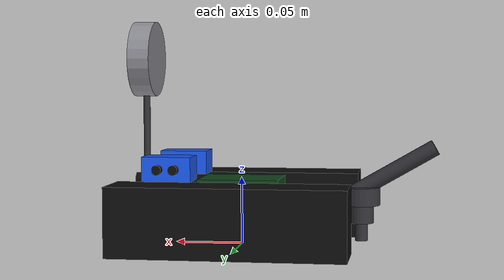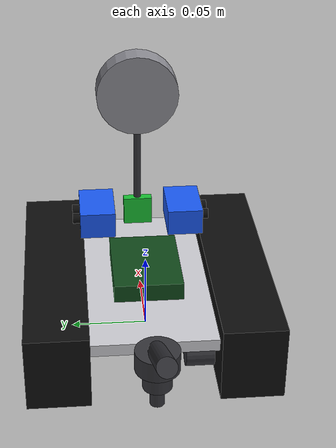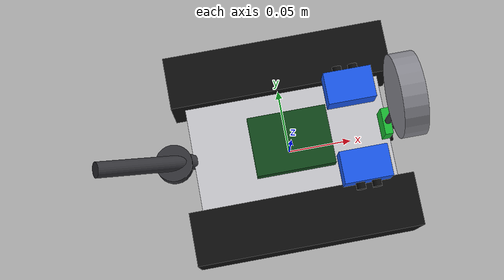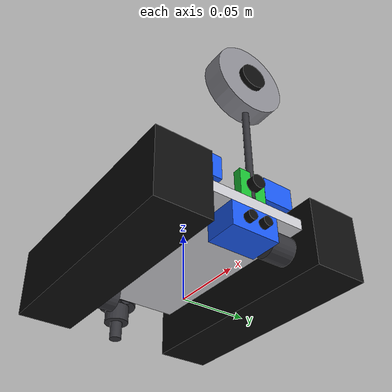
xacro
<?xml version="1.0"?>
<robot name="tank_car" xmlns:xacro="http://www.ros.org/wiki/xacro">

  <xacro:property name="pi" value="3.1415926535897931"/>

  <!-- Main dimensions (meters) -->
  <xacro:property name="body_length" value="0.15"/>
  <xacro:property name="body_width"  value="0.08"/>
  <xacro:property name="body_height" value="0.008"/>
  <xacro:property name="body_ground_clearance" value="0.030"/>

  <!-- Track + wheel geometry -->
  <xacro:property name="track_width"       value="0.040"/>
  <xacro:property name="wheel_radius"      value="0.025"/>
  <xacro:property name="wheel_thickness"   value="0.020"/>
  <xacro:property name="wheelbase"         value="0.120"/>
  <xacro:property name="track_loop_length" value="${wheelbase + 2.0*wheel_radius}"/>
  <xacro:property name="track_loop_height" value="${2.0*wheel_radius}"/>
  <xacro:property name="track_center_y"    value="${body_width/2.0 + track_width/2.0}"/>

  <!-- Derived positions -->
  <xacro:property name="body_center_z" value="${body_ground_clearance + body_height/2.0}"/>
  <xacro:property name="wheel_center_rel_z" value="${wheel_radius - body_center_z}"/>
  <xacro:property name="front_x" value="${ wheelbase/2.0}"/>
  <xacro:property name="rear_x"  value="${-wheelbase/2.0}"/>

  <!-- Decorative motors now tucked under the platform -->
  <xacro:property name="motor_radius" value="0.010"/>
  <xacro:property name="motor_length" value="0.018"/>
  <xacro:property name="motor_inset_y" value="${body_width/2.0 - motor_length/2.0 - 0.002}"/>
  <xacro:property name="motor_underbody_z" value="${-body_height/2.0 - motor_radius}"/>

  <!-- Blue box moved to front underside, rotated 90 deg -->
  <xacro:property name="under_box_length" value="0.036"/>
  <xacro:property name="under_box_width" value="0.024"/>
  <xacro:property name="under_box_height" value="0.018"/>
  <xacro:property name="under_box_mass" value="0.015"/>
  <xacro:property name="under_box_x" value="${body_length/2.0 - under_box_length/2.0 + 0.006}"/>
  <xacro:property name="under_box_z" value="${-body_height/2.0 - under_box_height/2.0}"/>
  <xacro:property name="top_box_x" value="${body_length/2.0 - under_box_length/2.0 - 0.008}"/>
  <xacro:property name="top_box_z" value="${body_height/2.0 + under_box_height/2.0 + 0.012}"/>
  <xacro:property name="top_box_y_offset" value="0.030"/>
  <xacro:property name="sensor_eye_radius" value="0.0035"/>
  <xacro:property name="sensor_eye_length" value="0.005"/>
  <xacro:property name="sensor_eye_x_offset" value="0.006"/>

  <!-- Rear floating cone (approximated with tapered cylinders) -->
  <xacro:property name="rear_cone_height" value="0.040"/>
  <xacro:property name="rear_cone_radius" value="0.014"/>
  <xacro:property name="rear_cone_mass" value="0.015"/>
  <xacro:property name="rear_cone_x" value="${-body_length/2.0 - 0.015}"/>
  <xacro:property name="rear_cone_z" value="-0.010"/>

  <!-- Rear cylinder from butt: 8 cm, tilted -30 deg -->
  <xacro:property name="rear_butt_cyl_length" value="0.080"/>
  <xacro:property name="rear_butt_cyl_radius" value="0.006"/>
  <xacro:property name="rear_butt_cyl_mass" value="0.012"/>
  <xacro:property name="rear_butt_cyl_axis_y" value="${2*pi/3}"/>
  <xacro:property name="rear_butt_cyl_center_x" value="${-body_length/2.0 - 0.5*rear_butt_cyl_length*0.8660254}"/>
  <xacro:property name="rear_butt_cyl_center_z" value="${0.5*rear_butt_cyl_length*0.5}"/>

  <!-- Front high webcam-like circular body -->
  <xacro:property name="webcam_radius" value="0.028"/>
  <xacro:property name="webcam_thickness" value="0.016"/>
  <xacro:property name="webcam_mass" value="0.020"/>
  <xacro:property name="webcam_x" value="${body_length/2.0 - 0.002}"/>
  <xacro:property name="webcam_z" value="0.105"/>
  <xacro:property name="webcam_lens_radius" value="0.010"/>
  <xacro:property name="webcam_lens_depth" value="0.004"/>
  <xacro:property name="webcam_pole_radius" value="0.0025"/>
  <xacro:property name="webcam_pole_mass" value="0.006"/>
  <xacro:property name="webcam_pole_height" value="${webcam_z - body_height/2.0}"/>

  <!-- Small front-top lens -->
  <xacro:property name="front_top_box_size" value="0.020"/>
  <xacro:property name="front_top_box_height" value="0.006"/>
  <xacro:property name="front_top_box_mass" value="0.002"/>
  <xacro:property name="front_top_lens_radius" value="0.005"/>
  <xacro:property name="front_top_box_x" value="${body_length/2.0 - front_top_box_height/2.0}"/>
  <xacro:property name="front_top_box_z" value="${body_height/2.0 + front_top_box_size/2.0}"/>

  <!-- Mid-platform raspberry-like module -->
  <xacro:property name="raspberry_length" value="0.060"/>
  <xacro:property name="raspberry_width" value="0.045"/>
  <xacro:property name="raspberry_height" value="0.012"/>
  <xacro:property name="raspberry_mass" value="0.020"/>
  <xacro:property name="raspberry_z" value="${body_height/2.0 + raspberry_height/2.0}"/>

  <!-- Masses -->
  <xacro:property name="body_mass"        value="0.40"/>
  <xacro:property name="wheel_mass"       value="0.03"/>
  <xacro:property name="track_mass"       value="0.05"/>
  <xacro:property name="motor_mass"       value="0.04"/>

  <!-- Materials -->
  <material name="silver">
    <color rgba="0.80 0.80 0.82 1.0"/>
  </material>
  <material name="dark_gray">
    <color rgba="0.20 0.20 0.22 1.0"/>
  </material>
  <material name="gray">
    <color rgba="0.55 0.55 0.58 1.0"/>
  </material>
  <material name="black">
    <color rgba="0.05 0.05 0.05 1.0"/>
  </material>
  <material name="blue">
    <color rgba="0.10 0.35 0.95 1.0"/>
  </material>
  <material name="green">
    <color rgba="0.10 0.75 0.20 1.0"/>
  </material>
  <material name="dark_green">
    <color rgba="0.06 0.28 0.10 1.0"/>
  </material>

  <xacro:macro name="box_inertial" params="mass x y z">
    <inertial>
      <origin xyz="0 0 0" rpy="0 0 0"/>
      <mass value="${mass}"/>
      <inertia
        ixx="${mass*(y*y + z*z)/12.0}"
        ixy="0.0"
        ixz="0.0"
        iyy="${mass*(x*x + z*z)/12.0}"
        iyz="0.0"
        izz="${mass*(x*x + y*y)/12.0}"/>
    </inertial>
  </xacro:macro>

  <xacro:macro name="cylinder_inertial" params="mass radius length">
    <inertial>
      <!-- Cylinder axis is rotated onto the Y-axis to match the wheel axle direction -->
      <origin xyz="0 0 0" rpy="${pi/2} 0 0"/>
      <mass value="${mass}"/>
      <inertia
        ixx="${mass*(3.0*radius*radius + length*length)/12.0}"
        ixy="0.0"
        ixz="0.0"
        iyy="${mass*(3.0*radius*radius + length*length)/12.0}"
        iyz="0.0"
        izz="${0.5*mass*radius*radius}"/>
    </inertial>
  </xacro:macro>

  <xacro:macro name="wheel_link" params="name">
    <link name="${name}">
      <xacro:cylinder_inertial mass="${wheel_mass}" radius="${wheel_radius}" length="${wheel_thickness}"/>
      <visual>
        <origin xyz="0 0 0" rpy="${pi/2} 0 0"/>
        <geometry>
          <cylinder radius="${wheel_radius}" length="${wheel_thickness}"/>
        </geometry>
        <material name="silver"/>
      </visual>
      <collision>
        <origin xyz="0 0 0" rpy="${pi/2} 0 0"/>
        <geometry>
          <cylinder radius="${wheel_radius}" length="${wheel_thickness}"/>
        </geometry>
      </collision>
    </link>
  </xacro:macro>

  <xacro:macro name="track_link" params="name">
    <link name="${name}">
      <xacro:box_inertial mass="${track_mass}" x="${track_loop_length}" y="${track_width}" z="${track_loop_height}"/>
      <visual>
        <origin xyz="0 0 0" rpy="0 0 0"/>
        <geometry>
          <box size="${track_loop_length} ${track_width} ${track_loop_height}"/>
        </geometry>
        <material name="black"/>
      </visual>
    </link>
  </xacro:macro>

  <xacro:macro name="motor_link" params="name">
    <link name="${name}">
      <xacro:cylinder_inertial mass="${motor_mass}" radius="${motor_radius}" length="${motor_length}"/>
      <visual>
        <origin xyz="0 0 0" rpy="${pi/2} 0 0"/>
        <geometry>
          <cylinder radius="${motor_radius}" length="${motor_length}"/>
        </geometry>
        <material name="dark_gray"/>
      </visual>
      <collision>
        <origin xyz="0 0 0" rpy="${pi/2} 0 0"/>
        <geometry>
          <cylinder radius="${motor_radius}" length="${motor_length}"/>
        </geometry>
      </collision>
    </link>
  </xacro:macro>

  <xacro:macro name="ultrasonic_sensor_link" params="name eye_side_sign">
    <link name="${name}">
      <xacro:box_inertial mass="${under_box_mass}" x="${under_box_length}" y="${under_box_width}" z="${under_box_height}"/>
      <visual>
        <origin xyz="0 0 0" rpy="0 0 0"/>
        <geometry>
          <box size="${under_box_length} ${under_box_width} ${under_box_height}"/>
        </geometry>
        <material name="blue"/>
      </visual>
      <collision>
        <origin xyz="0 0 0" rpy="0 0 0"/>
        <geometry>
          <box size="${under_box_length} ${under_box_width} ${under_box_height}"/>
        </geometry>
      </collision>
      <visual>
        <origin xyz="${sensor_eye_x_offset} ${eye_side_sign*(under_box_width/2.0 + sensor_eye_length/2.0)} 0" rpy="${pi/2} 0 0"/>
        <geometry>
          <cylinder radius="${sensor_eye_radius}" length="${sensor_eye_length}"/>
        </geometry>
        <material name="black"/>
      </visual>
      <visual>
        <origin xyz="${-sensor_eye_x_offset} ${eye_side_sign*(under_box_width/2.0 + sensor_eye_length/2.0)} 0" rpy="${pi/2} 0 0"/>
        <geometry>
          <cylinder radius="${sensor_eye_radius}" length="${sensor_eye_length}"/>
        </geometry>
        <material name="black"/>
      </visual>
      <collision>
        <origin xyz="${sensor_eye_x_offset} ${eye_side_sign*(under_box_width/2.0 + sensor_eye_length/2.0)} 0" rpy="${pi/2} 0 0"/>
        <geometry>
          <cylinder radius="${sensor_eye_radius}" length="${sensor_eye_length}"/>
        </geometry>
      </collision>
      <collision>
        <origin xyz="${-sensor_eye_x_offset} ${eye_side_sign*(under_box_width/2.0 + sensor_eye_length/2.0)} 0" rpy="${pi/2} 0 0"/>
        <geometry>
          <cylinder radius="${sensor_eye_radius}" length="${sensor_eye_length}"/>
        </geometry>
      </collision>
    </link>
  </xacro:macro>

  <link name="base_footprint"/>

  <link name="chassis">
    <xacro:box_inertial mass="${body_mass}" x="${body_length}" y="${body_width}" z="${body_height}"/>
    <visual>
      <origin xyz="0 0 0" rpy="0 0 0"/>
      <geometry>
        <box size="${body_length} ${body_width} ${body_height}"/>
      </geometry>
      <material name="silver"/>
    </visual>
    <collision>
      <origin xyz="0 0 0" rpy="0 0 0"/>
      <geometry>
        <box size="${body_length} ${body_width} ${body_height}"/>
      </geometry>
    </collision>
  </link>

  <joint name="base_footprint_to_chassis" type="fixed">
    <parent link="base_footprint"/>
    <child link="chassis"/>
    <origin xyz="0 0 ${body_center_z}" rpy="0 0 0"/>
  </joint>

  <!-- Wheels / sprockets -->
  <xacro:wheel_link name="front_left_drive_wheel"/>
  <xacro:wheel_link name="rear_left_idler_wheel"/>
  <xacro:wheel_link name="front_right_idler_wheel"/>
  <xacro:wheel_link name="rear_right_drive_wheel"/>

  <joint name="front_left_drive_joint" type="continuous">
    <parent link="chassis"/>
    <child link="front_left_drive_wheel"/>
    <origin xyz="${front_x} ${ track_center_y} ${wheel_center_rel_z}" rpy="0 0 0"/>
    <axis xyz="0 1 0"/>
  </joint>

  <joint name="rear_left_idler_joint" type="continuous">
    <parent link="chassis"/>
    <child link="rear_left_idler_wheel"/>
    <origin xyz="${rear_x} ${ track_center_y} ${wheel_center_rel_z}" rpy="0 0 0"/>
    <axis xyz="0 1 0"/>
    <dynamics damping="0.0" friction="0.0"/>
  </joint>

  <joint name="front_right_idler_joint" type="continuous">
    <parent link="chassis"/>
    <child link="front_right_idler_wheel"/>
    <origin xyz="${front_x} ${-track_center_y} ${wheel_center_rel_z}" rpy="0 0 0"/>
    <axis xyz="0 1 0"/>
    <dynamics damping="0.0" friction="0.0"/>
  </joint>

  <joint name="rear_right_drive_joint" type="continuous">
    <parent link="chassis"/>
    <child link="rear_right_drive_wheel"/>
    <origin xyz="${rear_x} ${-track_center_y} ${wheel_center_rel_z}" rpy="0 0 0"/>
    <axis xyz="0 1 0"/>
  </joint>

  <!-- Simplified rigid track bodies -->
  <xacro:track_link name="left_track"/>
  <xacro:track_link name="right_track"/>

  <joint name="left_track_joint" type="fixed">
    <parent link="chassis"/>
    <child link="left_track"/>
    <origin xyz="0 ${ track_center_y} ${wheel_center_rel_z}" rpy="0 0 0"/>
  </joint>

  <joint name="right_track_joint" type="fixed">
    <parent link="chassis"/>
    <child link="right_track"/>
    <origin xyz="0 ${-track_center_y} ${wheel_center_rel_z}" rpy="0 0 0"/>
  </joint>

  <!-- Decorative motors tucked under the platform on the driven corners -->
  <xacro:motor_link name="front_left_motor"/>
  <xacro:motor_link name="rear_right_motor"/>

  <joint name="front_left_motor_joint" type="fixed">
    <parent link="chassis"/>
    <child link="front_left_motor"/>
    <origin xyz="${front_x} ${motor_inset_y} ${motor_underbody_z}" rpy="0 0 0"/>
  </joint>

  <joint name="rear_right_motor_joint" type="fixed">
    <parent link="chassis"/>
    <child link="rear_right_motor"/>
    <origin xyz="${rear_x} ${-motor_inset_y} ${motor_underbody_z}" rpy="0 0 0"/>
  </joint>

  <xacro:ultrasonic_sensor_link name="under_platform_box" eye_side_sign="-1"/>

  <joint name="under_platform_box_joint" type="fixed">
    <parent link="chassis"/>
    <child link="under_platform_box"/>
    <origin xyz="${under_box_x} 0 ${under_box_z}" rpy="0 0 ${pi/2}"/>
  </joint>

  <xacro:ultrasonic_sensor_link name="top_platform_box_left" eye_side_sign="-1"/>

  <joint name="top_platform_box_left_joint" type="fixed">
    <parent link="chassis"/>
    <child link="top_platform_box_left"/>
    <origin xyz="${top_box_x} ${top_box_y_offset} ${top_box_z}" rpy="0 0 ${pi}"/>
  </joint>

  <xacro:ultrasonic_sensor_link name="top_platform_box_right" eye_side_sign="1"/>

  <joint name="top_platform_box_right_joint" type="fixed">
    <parent link="chassis"/>
    <child link="top_platform_box_right"/>
    <origin xyz="${top_box_x} ${-top_box_y_offset} ${top_box_z}" rpy="0 0 ${pi}"/>
  </joint>

  <link name="rear_floating_cone">
    <xacro:cylinder_inertial mass="${rear_cone_mass}" radius="${rear_cone_radius}" length="${rear_cone_height}"/>
    <visual>
      <origin xyz="0 0 ${rear_cone_height/3.0}" rpy="0 0 0"/>
      <geometry>
        <cylinder radius="${rear_cone_radius}" length="${rear_cone_height/3.0}"/>
      </geometry>
      <material name="dark_gray"/>
    </visual>
    <visual>
      <origin xyz="0 0 0" rpy="0 0 0"/>
      <geometry>
        <cylinder radius="${0.66*rear_cone_radius}" length="${rear_cone_height/3.0}"/>
      </geometry>
      <material name="dark_gray"/>
    </visual>
    <visual>
      <origin xyz="0 0 ${-rear_cone_height/3.0}" rpy="0 0 0"/>
      <geometry>
        <cylinder radius="${0.33*rear_cone_radius}" length="${rear_cone_height/3.0}"/>
      </geometry>
      <material name="dark_gray"/>
    </visual>
    <collision>
      <origin xyz="0 0 0" rpy="0 0 0"/>
      <geometry>
        <cylinder radius="${rear_cone_radius}" length="${rear_cone_height}"/>
      </geometry>
    </collision>
  </link>

  <joint name="rear_floating_cone_joint" type="fixed">
    <parent link="chassis"/>
    <child link="rear_floating_cone"/>
    <origin xyz="${rear_cone_x} 0 ${rear_cone_z}" rpy="0 0 0"/>
  </joint>

  <link name="rear_butt_cylinder">
    <xacro:cylinder_inertial mass="${rear_butt_cyl_mass}" radius="${rear_butt_cyl_radius}" length="${rear_butt_cyl_length}"/>
    <visual>
      <origin xyz="0 0 0" rpy="0 ${rear_butt_cyl_axis_y} 0"/>
      <geometry>
        <cylinder radius="${rear_butt_cyl_radius}" length="${rear_butt_cyl_length}"/>
      </geometry>
      <material name="dark_gray"/>
    </visual>
    <collision>
      <origin xyz="0 0 0" rpy="0 ${rear_butt_cyl_axis_y} 0"/>
      <geometry>
        <cylinder radius="${rear_butt_cyl_radius}" length="${rear_butt_cyl_length}"/>
      </geometry>
    </collision>
  </link>

  <joint name="rear_butt_cylinder_joint" type="fixed">
    <parent link="chassis"/>
    <child link="rear_butt_cylinder"/>
    <origin xyz="${rear_butt_cyl_center_x} 0 ${rear_butt_cyl_center_z}" rpy="0 0 0"/>
  </joint>

  <link name="front_webcam_pole">
    <xacro:cylinder_inertial mass="${webcam_pole_mass}" radius="${webcam_pole_radius}" length="${webcam_pole_height}"/>
    <visual>
      <origin xyz="0 0 0" rpy="0 0 0"/>
      <geometry>
        <cylinder radius="${webcam_pole_radius}" length="${webcam_pole_height}"/>
      </geometry>
      <material name="dark_gray"/>
    </visual>
    <collision>
      <origin xyz="0 0 0" rpy="0 0 0"/>
      <geometry>
        <cylinder radius="${webcam_pole_radius}" length="${webcam_pole_height}"/>
      </geometry>
    </collision>
  </link>

  <joint name="front_webcam_pole_joint" type="fixed">
    <parent link="chassis"/>
    <child link="front_webcam_pole"/>
    <origin xyz="${webcam_x} 0 ${body_height/2.0 + webcam_pole_height/2.0}" rpy="0 0 0"/>
  </joint>

  <link name="front_webcam">
    <xacro:box_inertial mass="${webcam_mass}" x="${webcam_thickness}" y="${2.0*webcam_radius}" z="${2.0*webcam_radius}"/>
    <visual>
      <origin xyz="0 0 0" rpy="0 ${pi/2} 0"/>
      <geometry>
        <cylinder radius="${webcam_radius}" length="${webcam_thickness}"/>
      </geometry>
      <material name="gray"/>
    </visual>
    <visual>
      <origin xyz="${webcam_thickness/2.0 + webcam_lens_depth/2.0} 0 0" rpy="0 ${pi/2} 0"/>
      <geometry>
        <cylinder radius="${webcam_lens_radius}" length="${webcam_lens_depth}"/>
      </geometry>
      <material name="black"/>
    </visual>
    <collision>
      <origin xyz="0 0 0" rpy="0 ${pi/2} 0"/>
      <geometry>
        <cylinder radius="${webcam_radius}" length="${webcam_thickness}"/>
      </geometry>
    </collision>
  </link>

  <joint name="front_webcam_joint" type="fixed">
    <parent link="chassis"/>
    <child link="front_webcam"/>
    <origin xyz="${webcam_x} 0 ${webcam_z}" rpy="0 0 0"/>
  </joint>

  <link name="front_top_lens">
    <xacro:box_inertial mass="${front_top_box_mass}" x="${front_top_box_height}" y="${front_top_box_size}" z="${front_top_box_size}"/>
    <visual>
      <origin xyz="0 0 0" rpy="0 0 0"/>
      <geometry>
        <box size="${front_top_box_height} ${front_top_box_size} ${front_top_box_size}"/>
      </geometry>
      <material name="green"/>
    </visual>
    <visual>
      <origin xyz="${front_top_box_height} 0 0" rpy="0 ${pi/2} 0"/>
      <geometry>
        <cylinder radius="${front_top_lens_radius}" length="${front_top_box_height}"/>
      </geometry>
      <material name="black"/>
    </visual>
    <collision>
      <origin xyz="0 0 0" rpy="0 0 0"/>
      <geometry>
        <box size="${front_top_box_height} ${front_top_box_size} ${front_top_box_size}"/>
      </geometry>
    </collision>
    <collision>
      <origin xyz="${front_top_box_height} 0 0" rpy="0 ${pi/2} 0"/>
      <geometry>
        <cylinder radius="${front_top_lens_radius}" length="${front_top_box_height}"/>
      </geometry>
    </collision>
  </link>

  <joint name="front_top_lens_joint" type="fixed">
    <parent link="chassis"/>
    <child link="front_top_lens"/>
    <origin xyz="${front_top_box_x} 0 ${front_top_box_z}" rpy="0 0 0"/>
  </joint>

  <link name="middle_raspberry_module">
    <xacro:box_inertial mass="${raspberry_mass}" x="${raspberry_length}" y="${raspberry_width}" z="${raspberry_height}"/>
    <visual>
      <origin xyz="0 0 0" rpy="0 0 0"/>
      <geometry>
        <box size="${raspberry_length} ${raspberry_width} ${raspberry_height}"/>
      </geometry>
      <material name="dark_green"/>
    </visual>
    <collision>
      <origin xyz="0 0 0" rpy="0 0 0"/>
      <geometry>
        <box size="${raspberry_length} ${raspberry_width} ${raspberry_height}"/>
      </geometry>
    </collision>
  </link>

  <joint name="middle_raspberry_module_joint" type="fixed">
    <parent link="chassis"/>
    <child link="middle_raspberry_module"/>
    <origin xyz="0 0 ${raspberry_z}" rpy="0 0 0"/>
  </joint>

</robot>
